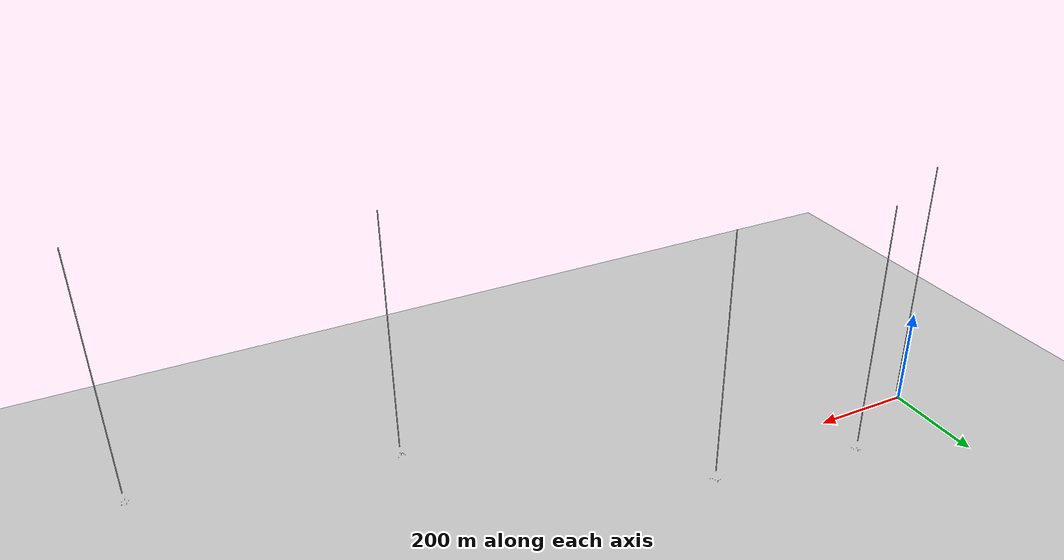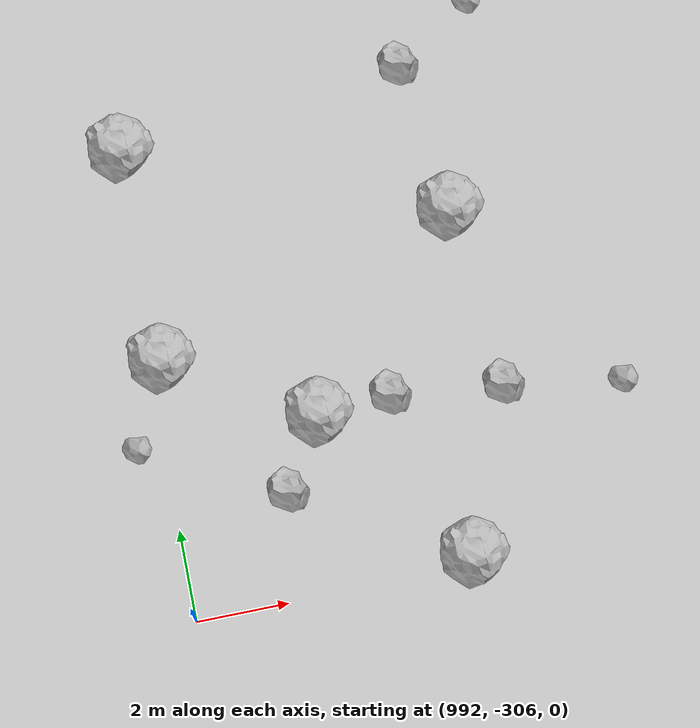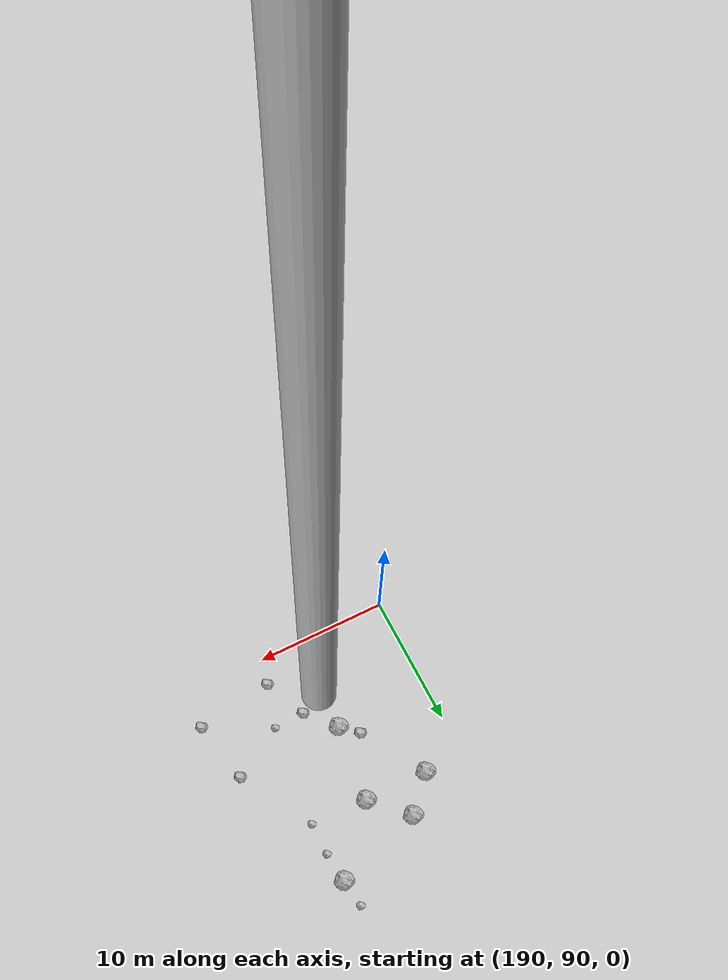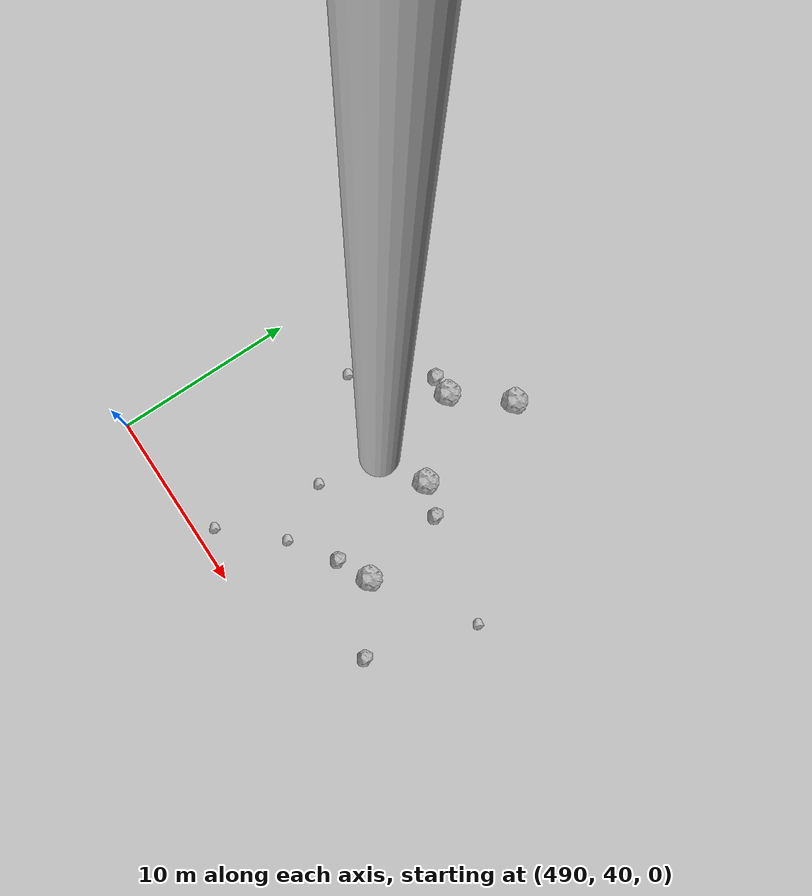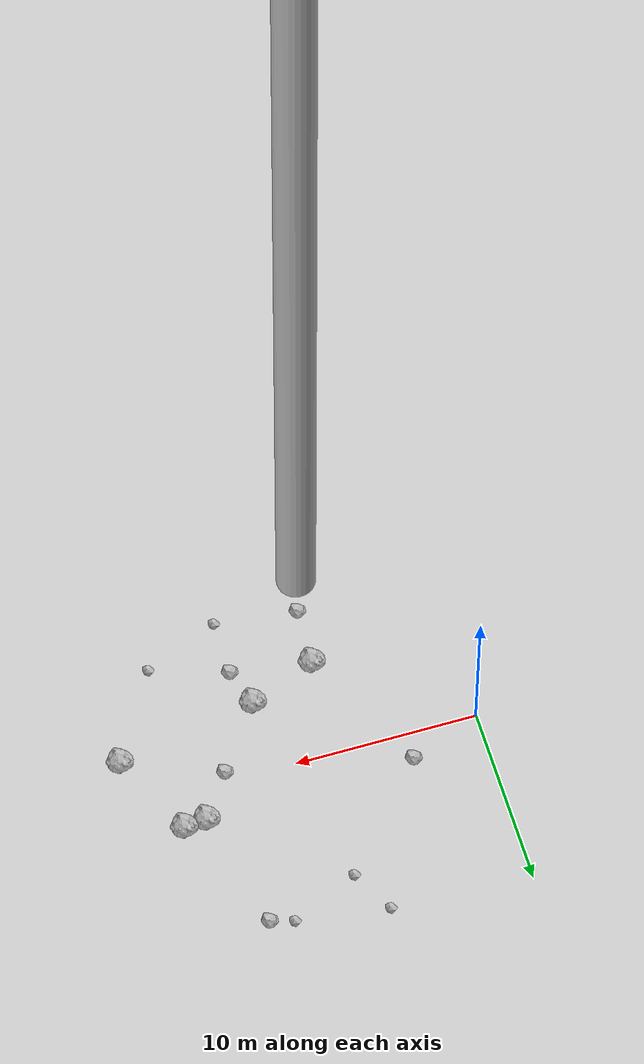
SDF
<?xml version="1.0" ?>
<sdf version="1.6">
  <world name="default">

    <include>
      <uri>model://custom_ground</uri>
    </include>

    <include>
      <uri>model://sun</uri>
    </include>

    <spherical_coordinates>
      <surface_model>EARTH_WGS84</surface_model>
      <latitude_deg>38.161479</latitude_deg>
      <longitude_deg>-122.454630</longitude_deg>
      <elevation>488.0</elevation>
      <heading_deg>90</heading_deg>
    </spherical_coordinates>

    <model name="rock1_0_0">
      <include>
        <uri>model://rock1</uri>
        <pose>15.540490397187433 1.9659816131775916 0.5 0 0 0</pose>
      </include>
    </model>
    <model name="rock1_0_1">
      <include>
        <uri>model://rock1</uri>
        <pose>11.246895892596383 -4.033800630018272 0.5 0 0 0</pose>
      </include>
    </model>
    <model name="rock1_0_2">
      <include>
        <uri>model://rock1</uri>
        <pose>19.010644806036154 -2.574570462541244 0.5 0 0 0</pose>
      </include>
    </model>
    <model name="rock1_0_3">
      <include>
        <uri>model://rock1</uri>
        <pose>7.527409092279848 -5.493545790472217 0.5 0 0 0</pose>
      </include>
    </model>
    <model name="rock1_0_4">
      <include>
        <uri>model://rock1</uri>
        <pose>16.79339428544891 2.0891756959527576 0.5 0 0 0</pose>
      </include>
    </model>
    <model name="rock2_0_0">
      <include>
        <uri>model://rock2</uri>
        <pose>13.997229786149358 8.561809859419277 0.3 0 0 0</pose>
      </include>
    </model>
    <model name="rock2_0_1">
      <include>
        <uri>model://rock2</uri>
        <pose>7.353434778743879 -8.746598093645847 0.3 0 0 0</pose>
      </include>
    </model>
    <model name="rock2_0_2">
      <include>
        <uri>model://rock2</uri>
        <pose>13.808274994833507 -0.4930549137847766 0.3 0 0 0</pose>
      </include>
    </model>
    <model name="rock2_0_3">
      <include>
        <uri>model://rock2</uri>
        <pose>11.89145034164306 -6.188732883952744 0.3 0 0 0</pose>
      </include>
    </model>
    <model name="rock2_0_4">
      <include>
        <uri>model://rock2</uri>
        <pose>3.962389788249401 1.5471707240612673 0.3 0 0 0</pose>
      </include>
    </model>
    <model name="rock3_0_0">
      <include>
        <uri>model://rock3</uri>
        <pose>8.952515749662327 7.2071722809979235 0.2 0 0 0</pose>
      </include>
    </model>
    <model name="rock3_0_1">
      <include>
        <uri>model://rock3</uri>
        <pose>12.70075697583838 8.890022183690295 0.2 0 0 0</pose>
      </include>
    </model>
    <model name="rock3_0_2">
      <include>
        <uri>model://rock3</uri>
        <pose>16.02163697708257 -7.606837406395552 0.2 0 0 0</pose>
      </include>
    </model>
    <model name="rock3_0_3">
      <include>
        <uri>model://rock3</uri>
        <pose>11.871502200385821 -9.333314098813464 0.2 0 0 0</pose>
      </include>
    </model>
    <model name="rock3_0_4">
      <include>
        <uri>model://rock3</uri>
        <pose>7.674022907069298 9.596747266877038 0.2 0 0 0</pose>
      </include>
    </model>
    <model name="rock1_1_0">
      <include>
        <uri>model://rock1</uri>
        <pose>195.42424401839818 105.58901426881245 0.5 0 0 0</pose>
      </include>
    </model>
    <model name="rock1_1_1">
      <include>
        <uri>model://rock1</uri>
        <pose>197.92230634769714 103.08894313732998 0.5 0 0 0</pose>
      </include>
    </model>
    <model name="rock1_1_2">
      <include>
        <uri>model://rock1</uri>
        <pose>201.97422347330846 107.56534440801552 0.5 0 0 0</pose>
      </include>
    </model>
    <model name="rock1_1_3">
      <include>
        <uri>model://rock1</uri>
        <pose>197.22579234384352 97.30660292529686 0.5 0 0 0</pose>
      </include>
    </model>
    <model name="rock1_1_4">
      <include>
        <uri>model://rock1</uri>
        <pose>193.10763332833457 103.15724697789305 0.5 0 0 0</pose>
      </include>
    </model>
    <model name="rock2_1_0">
      <include>
        <uri>model://rock2</uri>
        <pose>199.06539229903078 95.15396901324071 0.3 0 0 0</pose>
      </include>
    </model>
    <model name="rock2_1_1">
      <include>
        <uri>model://rock2</uri>
        <pose>205.2948739751521 97.45915055194152 0.3 0 0 0</pose>
      </include>
    </model>
    <model name="rock2_1_2">
      <include>
        <uri>model://rock2</uri>
        <pose>200.45644064177992 91.9532619242544 0.3 0 0 0</pose>
      </include>
    </model>
    <model name="rock2_1_3">
      <include>
        <uri>model://rock2</uri>
        <pose>206.23805791179373 92.78333879877957 0.3 0 0 0</pose>
      </include>
    </model>
    <model name="rock2_1_4">
      <include>
        <uri>model://rock2</uri>
        <pose>195.96820985223192 98.4080908288455 0.3 0 0 0</pose>
      </include>
    </model>
    <model name="rock3_1_0">
      <include>
        <uri>model://rock3</uri>
        <pose>201.66187567529443 109.60033474820834 0.2 0 0 0</pose>
      </include>
    </model>
    <model name="rock3_1_1">
      <include>
        <uri>model://rock3</uri>
        <pose>202.16414927811616 102.85712096001618 0.2 0 0 0</pose>
      </include>
    </model>
    <model name="rock3_1_2">
      <include>
        <uri>model://rock3</uri>
        <pose>202.15694753009302 105.27264736991718 0.2 0 0 0</pose>
      </include>
    </model>
    <model name="rock3_1_3">
      <include>
        <uri>model://rock3</uri>
        <pose>195.49176768498336 91.16403611194012 0.2 0 0 0</pose>
      </include>
    </model>
    <model name="rock3_1_4">
      <include>
        <uri>model://rock3</uri>
        <pose>201.37713761519547 95.21719096006721 0.2 0 0 0</pose>
      </include>
    </model>
    <model name="rock1_2_0">
      <include>
        <uri>model://rock1</uri>
        <pose>501.5126677581045 52.1111924792161 0.5 0 0 0</pose>
      </include>
    </model>
    <model name="rock1_2_1">
      <include>
        <uri>model://rock1</uri>
        <pose>491.9386207739704 54.35202428899209 0.5 0 0 0</pose>
      </include>
    </model>
    <model name="rock1_2_2">
      <include>
        <uri>model://rock1</uri>
        <pose>504.2986776554655 46.65590736844911 0.5 0 0 0</pose>
      </include>
    </model>
    <model name="rock1_2_3">
      <include>
        <uri>model://rock1</uri>
        <pose>498.0806344191859 55.740846574888366 0.5 0 0 0</pose>
      </include>
    </model>
    <model name="rock1_2_4">
      <include>
        <uri>model://rock1</uri>
        <pose>500.4211370692892 58.59944803936625 0.5 0 0 0</pose>
      </include>
    </model>
    <model name="rock2_2_0">
      <include>
        <uri>model://rock2</uri>
        <pose>503.3334052777562 51.549039822114196 0.3 0 0 0</pose>
      </include>
    </model>
    <model name="rock2_2_1">
      <include>
        <uri>model://rock2</uri>
        <pose>502.47559543233035 45.760519349855215 0.3 0 0 0</pose>
      </include>
    </model>
    <model name="rock2_2_2">
      <include>
        <uri>model://rock2</uri>
        <pose>496.9140247807487 55.69056531851559 0.3 0 0 0</pose>
      </include>
    </model>
    <model name="rock2_2_3">
      <include>
        <uri>model://rock2</uri>
        <pose>493.47819511412484 54.160060104253304 0.3 0 0 0</pose>
      </include>
    </model>
    <model name="rock2_2_4">
      <include>
        <uri>model://rock2</uri>
        <pose>507.7846059990121 44.100911379864954 0.3 0 0 0</pose>
      </include>
    </model>
    <model name="rock3_2_0">
      <include>
        <uri>model://rock3</uri>
        <pose>509.5605074205071 50.283336376340266 0.2 0 0 0</pose>
      </include>
    </model>
    <model name="rock3_2_1">
      <include>
        <uri>model://rock3</uri>
        <pose>494.19022800624157 51.70131428077295 0.2 0 0 0</pose>
      </include>
    </model>
    <model name="rock3_2_2">
      <include>
        <uri>model://rock3</uri>
        <pose>500.06838975866896 43.99488003791394 0.2 0 0 0</pose>
      </include>
    </model>
    <model name="rock3_2_3">
      <include>
        <uri>model://rock3</uri>
        <pose>498.40506804971534 47.101234029546475 0.2 0 0 0</pose>
      </include>
    </model>
    <model name="rock3_2_4">
      <include>
        <uri>model://rock3</uri>
        <pose>497.3508449888599 40.99327915064808 0.2 0 0 0</pose>
      </include>
    </model>
    <model name="rock1_3_0">
      <include>
        <uri>model://rock1</uri>
        <pose>992.3299966989446 -300.28253959809916 0.5 0 0 0</pose>
      </include>
    </model>
    <model name="rock1_3_1">
      <include>
        <uri>model://rock1</uri>
        <pose>999.1547147246084 -298.1562917610904 0.5 0 0 0</pose>
      </include>
    </model>
    <model name="rock1_3_2">
      <include>
        <uri>model://rock1</uri>
        <pose>995.4434225935062 -302.1153705141678 0.5 0 0 0</pose>
      </include>
    </model>
    <model name="rock1_3_3">
      <include>
        <uri>model://rock1</uri>
        <pose>998.0811460596093 -305.76096251741683 0.5 0 0 0</pose>
      </include>
    </model>
    <model name="rock1_3_4">
      <include>
        <uri>model://rock1</uri>
        <pose>992.3041921464185 -295.4128256515003 0.5 0 0 0</pose>
      </include>
    </model>
    <model name="rock2_3_0">
      <include>
        <uri>model://rock2</uri>
        <pose>998.7105820736393 -294.63213833106676 0.3 0 0 0</pose>
      </include>
    </model>
    <model name="rock2_3_1">
      <include>
        <uri>model://rock2</uri>
        <pose>997.0286217914346 -301.96816739305893 0.3 0 0 0</pose>
      </include>
    </model>
    <model name="rock2_3_2">
      <include>
        <uri>model://rock2</uri>
        <pose>999.4808154608389 -302.2218426691691 0.3 0 0 0</pose>
      </include>
    </model>
    <model name="rock2_3_3">
      <include>
        <uri>model://rock2</uri>
        <pose>994.4512939055359 -303.6291153291564 0.3 0 0 0</pose>
      </include>
    </model>
    <model name="rock2_3_4">
      <include>
        <uri>model://rock2</uri>
        <pose>998.6311109109976 -290.8025561285025 0.3 0 0 0</pose>
      </include>
    </model>
    <model name="rock3_3_0">
      <include>
        <uri>model://rock3</uri>
        <pose>1005.7823393973235 -293.72975289578983 0.2 0 0 0</pose>
      </include>
    </model>
    <model name="rock3_3_1">
      <include>
        <uri>model://rock3</uri>
        <pose>1005.8110717319237 -292.57141696939675 0.2 0 0 0</pose>
      </include>
    </model>
    <model name="rock3_3_2">
      <include>
        <uri>model://rock3</uri>
        <pose>1002.0454072425044 -302.65848065976104 0.2 0 0 0</pose>
      </include>
    </model>
    <model name="rock3_3_3">
      <include>
        <uri>model://rock3</uri>
        <pose>991.427347325383 -302.12486578165135 0.2 0 0 0</pose>
      </include>
    </model>
    <model name="rock3_3_4">
      <include>
        <uri>model://rock3</uri>
        <pose>1000.522290435486 -293.4377913337212 0.2 0 0 0</pose>
      </include>
    </model>
    <model name="rock1_4_0">
      <include>
        <uri>model://rock1</uri>
        <pose>1505.0997402949376 -402.65867014264643 0.5 0 0 0</pose>
      </include>
    </model>
    <model name="rock1_4_1">
      <include>
        <uri>model://rock1</uri>
        <pose>1497.8579290134549 -390.2463917317339 0.5 0 0 0</pose>
      </include>
    </model>
    <model name="rock1_4_2">
      <include>
        <uri>model://rock1</uri>
        <pose>1492.8056638772418 -401.4577415590799 0.5 0 0 0</pose>
      </include>
    </model>
    <model name="rock1_4_3">
      <include>
        <uri>model://rock1</uri>
        <pose>1505.4692692579824 -393.0782127724978 0.5 0 0 0</pose>
      </include>
    </model>
    <model name="rock1_4_4">
      <include>
        <uri>model://rock1</uri>
        <pose>1498.6512823523935 -405.9640909809651 0.5 0 0 0</pose>
      </include>
    </model>
    <model name="rock2_4_0">
      <include>
        <uri>model://rock2</uri>
        <pose>1502.4105523208175 -394.80229653078135 0.3 0 0 0</pose>
      </include>
    </model>
    <model name="rock2_4_1">
      <include>
        <uri>model://rock2</uri>
        <pose>1494.1501568032752 -394.0310731777032 0.3 0 0 0</pose>
      </include>
    </model>
    <model name="rock2_4_2">
      <include>
        <uri>model://rock2</uri>
        <pose>1497.194941198089 -394.9541883139058 0.3 0 0 0</pose>
      </include>
    </model>
    <model name="rock2_4_3">
      <include>
        <uri>model://rock2</uri>
        <pose>1494.5212112100476 -391.90638624485024 0.3 0 0 0</pose>
      </include>
    </model>
    <model name="rock2_4_4">
      <include>
        <uri>model://rock2</uri>
        <pose>1497.9191430165927 -409.57653261698954 0.3 0 0 0</pose>
      </include>
    </model>
    <model name="rock3_4_0">
      <include>
        <uri>model://rock3</uri>
        <pose>1507.8658799439006 -394.62198430051154 0.2 0 0 0</pose>
      </include>
    </model>
    <model name="rock3_4_1">
      <include>
        <uri>model://rock3</uri>
        <pose>1505.4498346368403 -394.1251500577044 0.2 0 0 0</pose>
      </include>
    </model>
    <model name="rock3_4_2">
      <include>
        <uri>model://rock3</uri>
        <pose>1494.8483291097848 -393.399820670455 0.2 0 0 0</pose>
      </include>
    </model>
    <model name="rock3_4_3">
      <include>
        <uri>model://rock3</uri>
        <pose>1501.3903640895076 -407.3141071921266 0.2 0 0 0</pose>
      </include>
    </model>
    <model name="rock3_4_4">
      <include>
        <uri>model://rock3</uri>
        <pose>1493.8869485467135 -402.7531439626173 0.2 0 0 0</pose>
      </include>
    </model>

    <model name="cylinder_1">
      <static>true</static>
      <link name="link">
        <visual name="visual">
          <geometry>
            <cylinder>
              <radius>1</radius>
              <length>500</length>
            </cylinder>
          </geometry>
        </visual>
      </link>
      <pose>10 0 270 0 0 0</pose>
    </model>

    <model name="cylinder_2">
      <static>true</static>
      <link name="link">
        <visual name="visual">
          <geometry>
            <cylinder>
              <radius>1</radius>
              <length>500</length>
            </cylinder>
          </geometry>
        </visual>
      </link>
      <pose>200 100 270 0 0 0</pose>
    </model>

    <model name="cylinder_3">
      <static>true</static>
      <link name="link">
        <visual name="visual">
          <geometry>
            <cylinder>
              <radius>1</radius>
              <length>500</length>
            </cylinder>
          </geometry>
        </visual>
      </link>
      <pose>500 50 270 0 0 0</pose>
    </model>

    <model name="cylinder_4">
      <static>true</static>
      <link name="link">
        <visual name="visual">
          <geometry>
            <cylinder>
              <radius>1</radius>
              <length>500</length>
            </cylinder>
          </geometry>
        </visual>
      </link>
      <pose>1000 -300 270 0 0 0</pose>
    </model>

    <model name="cylinder_5">
      <static>true</static>
      <link name="link">
        <visual name="visual">
          <geometry>
            <cylinder>
              <radius>1</radius>
              <length>500</length>
            </cylinder>
          </geometry>
        </visual>
      </link>
      <pose>1500 -400 270 0 0 0</pose>
    </model>

  </world>
</sdf>

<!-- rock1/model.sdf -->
<sdf version="1.6">
  <model name="rock1">
    <static>true</static> <!-- Set to true if the model should not move -->
    <pose>0 0 0 0 0 0</pose>

    <!--z offset is 0.5 for full scale-->

    <link name="link">
      <collision name="rock1_collision">
        <geometry>
          <mesh>
            <uri>model://meshes/rock1.dae</uri>
          </mesh>
        </geometry>
      </collision>
      <visual name="rock1_visual">
        <geometry>
          <mesh>
            <uri>model://meshes/rock1.dae</uri>
          </mesh>
        </geometry>
        <material>
          <script>
            <uri>model://materials/scripts/sand_pebbles.material</uri>
            <name>custom_ground/Image</name>
          </script>
        </material>
      </visual>
    </link>
  </model>
</sdf>

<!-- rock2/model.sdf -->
<sdf version="1.6">
  <model name="rock2">
    <static>true</static> <!-- Set to true if the model should not move -->
    <pose>0 0 0 0 0 0</pose>

    <!--z offset is 0.3 for full scale-->

    <link name="link">
      <collision name="rock2_collision">
        <geometry>
          <mesh>
            <uri>model://meshes/rock2.dae</uri>
          </mesh>
        </geometry>
      </collision>
      <visual name="rock2_visual">
        <geometry>
          <mesh>
            <uri>model://meshes/rock2.dae</uri>
          </mesh>
        </geometry>
        <material>
          <script>
            <uri>model://materials/scripts/sand_pebbles.material</uri>
            <name>custom_ground/Image</name>
          </script>
        </material>
      </visual>
    </link>
  </model>
</sdf>

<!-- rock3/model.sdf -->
<sdf version="1.6">
  <model name="rock3">
    <static>true</static> <!-- Set to true if the model should not move -->
    <pose>0 0 0 0 0 0</pose>

    <!--z offset is 0.2 for full scale-->

    <link name="link">
      <collision name="rock3_collision">
        <geometry>
          <mesh>
            <uri>model://meshes/rock3.dae</uri>
          </mesh>
        </geometry>
      </collision>
      <visual name="rock3_visual">
        <geometry>
          <mesh>
            <uri>model://meshes/rock3.dae</uri>
          </mesh>
        </geometry>
        <material>
          <script>
            <uri>model://materials/scripts/sand_pebbles.material</uri>
            <name>custom_ground/Image</name>
          </script>
        </material>
      </visual>
    </link>
  </model>
</sdf>

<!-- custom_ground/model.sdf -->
<sdf version="1.6">
  <model name="custom_ground">
    <static>true</static> <!-- Ground is static and immovable -->
    <link name="ground_link">
      <pose>240 0 0 0 0 0</pose> <!-- Position and orientation relative to the world -->
      <!-- Visual Representation -->
      <visual name="ground_visual">
        <geometry>
          <plane>
            <normal>0 0 1</normal> <!-- Upward facing plane -->
            <size>500 500</size> <!-- Size of the plane -->
          </plane>
        </geometry>
        <material>
          <script>
            <uri>model://materials/scripts/sand_pebbles.material</uri>
            <name>custom_ground/Image</name>
          </script>
        </material>
      </visual>

      <!-- Collision Representation -->
      <collision name="ground_collision">
        <geometry>
          <plane>
            <normal>0 0 1</normal>
            <size>100 100</size>
          </plane>
        </geometry>
      </collision>

    </link>
  </model>
</sdf>
